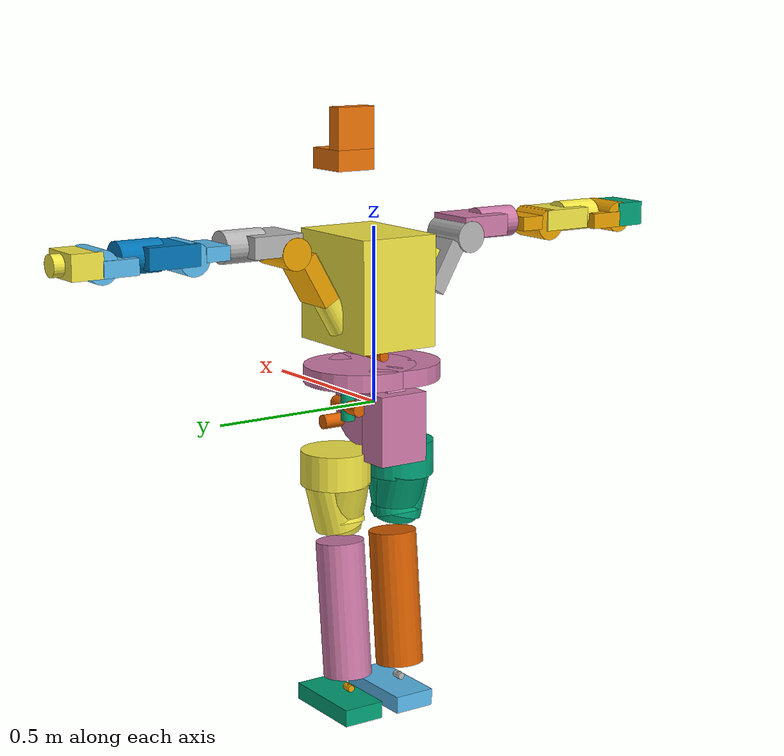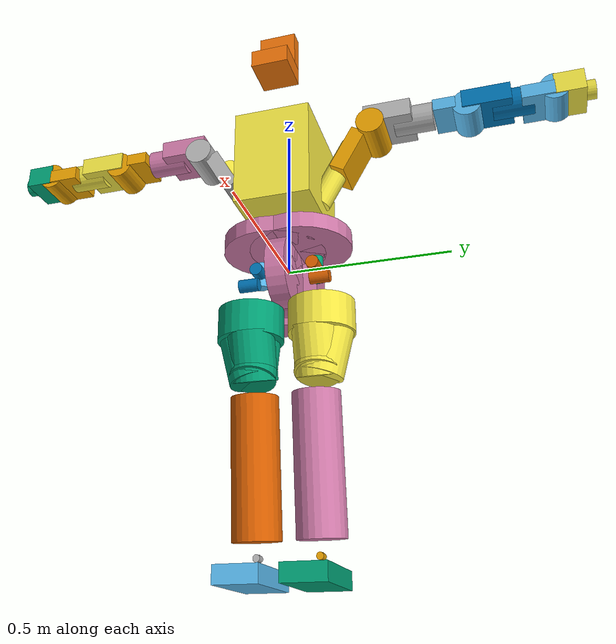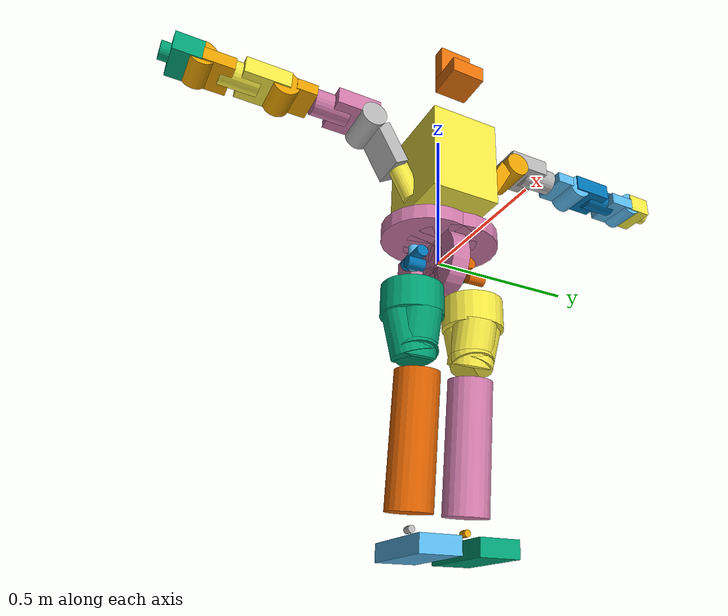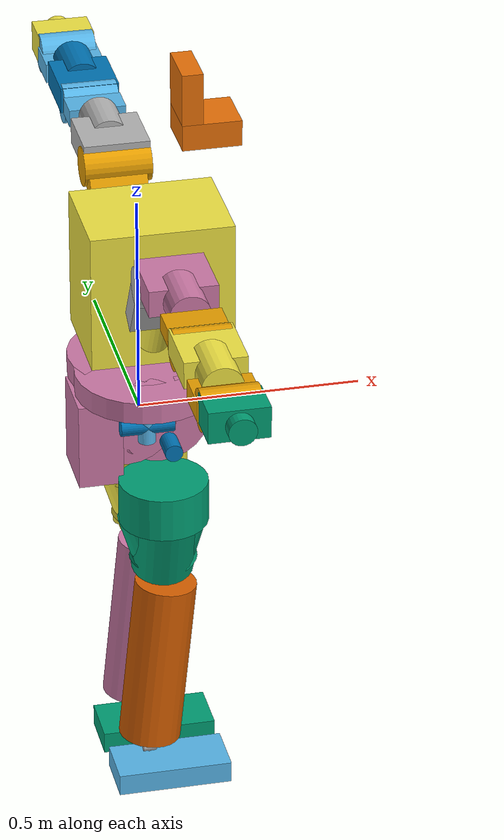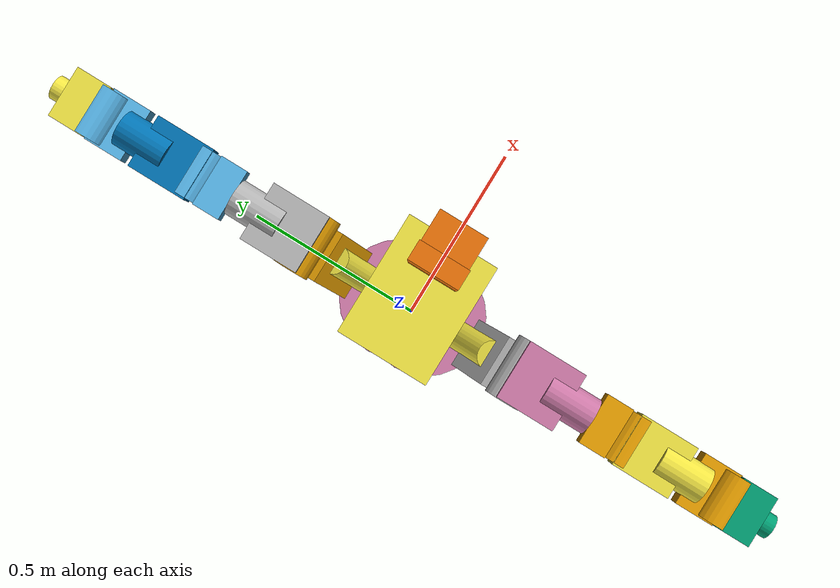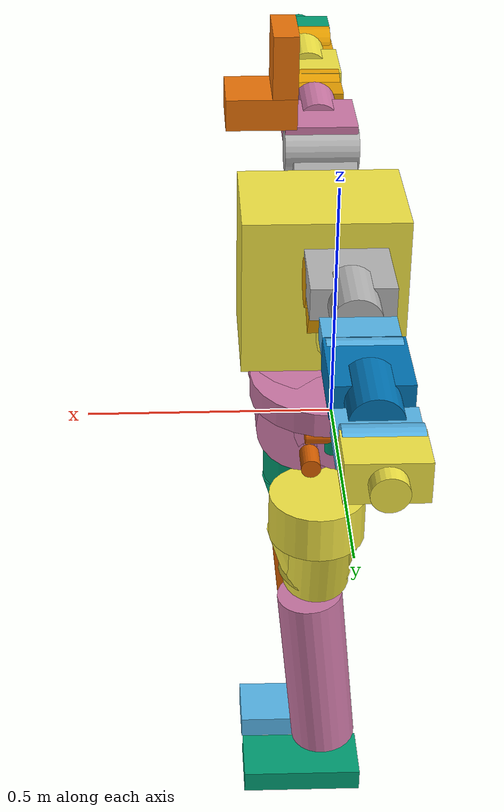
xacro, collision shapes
<robot name="uv_biped" xmlns:xacro="http://ros.org/wiki/xacro">
  <!--include filename="$(find uv_biped)/urdf/atlas_simple_shapes.urdf" /-->
  <include filename="$(find uv_biped)/urdf/uv_biped_simple_shapes.urdf" />
  <include filename="$(find uv_biped)/urdf/atlas.gazebo" />
  <include filename="$(find uv_biped)/urdf/atlas.transmission" />
  <include filename="$(find uv_biped)/urdf/empty_head.urdf" />
</robot>

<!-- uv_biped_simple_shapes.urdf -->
<robot name="drc_skeleton">
    <link name="l_clav">
        <inertial>
            <mass value="2.369" />
            <origin xyz="0.014 0.058 0.029" rpy="0 -0 0" />
            <inertia ixx="0.004" ixy="0.001" ixz="0" iyy="0.006" iyz="0" izz="0.007" />
        </inertial>
        <visual>
            <origin xyz="0 0 0" rpy="1.04719755 0 0" />
            <geometry>
                <mesh filename="package://atlas/meshes/l_clav.dae" scale="1 1 1" />
            </geometry>
        </visual>
        <collision>
          <origin rpy="0 1.5707963267949 0" xyz="0 0.0697 0.0261"/>
          <geometry>
            <cylinder radius="0.045" length="0.1525"/>
          </geometry>
        </collision>
        <collision>
          <origin rpy="1.0472 0 0" xyz="-0.005 -0.0074 -0.0538"/>
          <geometry>
            <box size="0.13 0.15 0.05"/>
          </geometry>
        </collision>
    </link>
    <link name="l_farm">
        <inertial>
            <mass value="0.981" />
            <origin xyz="0 0.041 0" rpy="0 -0 0" />
            <inertia ixx="0.003" ixy="0" ixz="0" iyy="0.001" iyz="0" izz="0.003" />
        </inertial>
        <visual>
            <origin xyz="0 -0.06 0" rpy="0 -0 0" />
            <geometry>
                <mesh filename="package://atlas/meshes/l_farm.dae" scale="1 1 1" />
            </geometry>
        </visual>
        <collision>
          <origin rpy="0 1.5708 0" xyz="0.0 0.065 0.004"/>
          <geometry>
            <cylinder radius="0.045" length="0.125"/>
          </geometry>
        </collision>
        <collision>
          <origin rpy="0 0 0" xyz="0.001 0.015 -0.002"/>
          <geometry>
            <box size="0.135 0.1 0.045"/>
          </geometry>
        </collision>
    </link>
    <link name="l_foot">
        <inertial>
            <mass value="0.867" />
            <origin xyz="0.027 0 -0.067" rpy="0 -0 0" />
            <inertia ixx="0.002" ixy="0" ixz="0" iyy="0.00350421" iyz="0" izz="0.00400651" />
        </inertial>
        <visual>
            <origin xyz="0 0 0" rpy="0 -0 0" />
            <geometry>
                <mesh filename="package://atlas/meshes/l_foot.dae" scale="1 1 1" />
            </geometry>
        </visual>
        <!-- bottom -->
        <collision>
          <origin xyz="0.048 0 -0.056119" rpy="0 0 0"/>
          <geometry>
            <box size="0.26 0.124887 0.05"/>
          </geometry>
        </collision>
    </link>
    <link name="l_hand">
        <inertial>
            <mass value="2.263" />
            <origin xyz="0 0.093 0" rpy="0 -0 0" />
            <inertia ixx="0.01" ixy="0" ixz="0" iyy="0.002" iyz="0" izz="0.01" />
        </inertial>
        <visual>
            <origin xyz="0 0 0" rpy="0 -0 0" />
            <geometry>
                <mesh filename="package://atlas/meshes/l_hand.dae" scale="1 1 1" />
            </geometry>
        </visual>
        <collision>
          <origin rpy="1.5707963267949 0 0" xyz="0.001 0.1 0.01"/>
          <geometry>
            <cylinder radius="0.03" length="0.05"/>
          </geometry>
        </collision>
        <collision>
          <origin rpy="0 0 0" xyz="0.001 0.05 0.01"/>
          <geometry>
            <box size="0.13 0.09 0.07"/>
          </geometry>
        </collision>
    </link>
    <link name="l_larm">
        <inertial>
            <mass value="2.148" />
            <origin xyz="-0.003 0.099 -0.014" rpy="0 -0 0" />
            <inertia ixx="0.005" ixy="0" ixz="0" iyy="0.003" iyz="0" izz="0.006" />
        </inertial>
        <visual>
            <origin xyz="0 0 0" rpy="0 -0 0" />
            <geometry>
                <mesh filename="package://atlas/meshes/l_larm.dae" scale="1 1 1" />
            </geometry>
        </visual>
        <collision>
          <origin rpy="1.5707963267949 0 0" xyz="0.001 0.127 0.00"/>
          <geometry>
            <cylinder radius="0.045" length="0.125"/>
          </geometry>
        </collision>
        <collision>
          <origin rpy="0 0 0" xyz="0.001 0.051 0.0"/>
          <geometry>
            <box size="0.135 0.15 0.06"/>
          </geometry>
        </collision>
    </link>
    <link name="l_lglut">
        <inertial>
            <mass value="0.803" />
            <origin xyz="0.0133341 0.0170484 -0.0312052" rpy="0 -0 0" />
            <inertia ixx="0.0453457" ixy="-2.24344e-05" ixz="2.50508e-06" iyy="0.0174182" iyz="0.000137862" izz="0.0071591" />
        </inertial>
        <visual>
            <origin xyz="0 0 0" rpy="0 -0 0" />
            <geometry>
                <mesh filename="package://atlas/meshes/l_lglut.dae" scale="1 1 1" />
            </geometry>
        </visual>
        <collision>
          <origin rpy="1.5707963267949 0 0" xyz="0.049968 0.022488 -0.0501165"/>
          <geometry>
            <cylinder radius="0.02009687" length="0.060306"/>
          </geometry>
        </collision>
        <collision>
          <origin rpy="0 1.5707963267949 0" xyz="0 0 0"/>
          <geometry>
            <cylinder radius="0.02" length="0.12"/>
          </geometry>
        </collision>
    </link>
    <link name="l_lleg">
        <inertial>
            <mass value="4.367" />
            <origin xyz="0.001 0 -0.187" rpy="0 -0 0" />
            <inertia ixx="0.077" ixy="0" ixz="-0.003" iyy="0.076" iyz="0" izz="0.01" />
        </inertial>
        <visual>
            <origin xyz="0 0 0" rpy="0 -0 0" />
            <geometry>
                <mesh filename="package://atlas/meshes/l_lleg.dae" scale="1.0 1.0 1.0" />
            </geometry>
        </visual>
        <collision>
          <origin rpy="0 0.10 0" xyz="0.02 0.00295 -0.18"/>
          <geometry>
            <cylinder radius="0.07" length="0.40"/>
          </geometry>
        </collision>
    </link>
    <link name="l_scap">
        <inertial>
            <mass value="2.707" />
            <origin xyz="-0.002 0.108 0" rpy="0 -0 0" />
            <inertia ixx="0.01" ixy="0" ixz="0" iyy="0.005" iyz="0" izz="0.013" />
        </inertial>
        <visual>
            <origin xyz="0 0 0" rpy="0 0 0" />
            <geometry>
                <mesh filename="package://atlas/meshes/l_scap.dae" scale="1 1 1" />
            </geometry>
        </visual>
        <collision>
          <origin rpy="1.5707963267949 0 0" xyz="0.001 0.12651 0.01521"/>
          <geometry>
            <cylinder radius="0.045" length="0.125"/>
          </geometry>
        </collision>
        <collision>
          <origin rpy="0 0 0" xyz="0.001 0.05 0.016"/>
          <geometry>
            <box size="0.15 0.15 0.06"/>
          </geometry>
        </collision>
    </link>
    <link name="l_talus">
        <inertial>
            <mass value="0.867" />
            <origin xyz="0 0 0" rpy="0 -0 0" />
            <inertia ixx="0.001" ixy="0" ixz="0" iyy="0.00350421" iyz="0" izz="0.00400651" />
        </inertial>
        <visual>
            <origin xyz="0 0 0" rpy="0 -0 0" />
            <geometry>
                <mesh filename="package://atlas/meshes/l_talus.dae" scale="1 1 1" />
            </geometry>
        </visual>
        <collision>
          <origin rpy="0 1.5707963267949 0" xyz="0 0 0"/>
          <geometry>
            <cylinder radius="0.010181" length="0.029542"/>
          </geometry>
        </collision>
        <collision>
          <origin rpy="1.5707963267949 0 0" xyz="0 0 0"/>
          <geometry>
            <cylinder radius="0.010348" length="0.010059"/>
          </geometry>
        </collision>
    </link>
    <link name="l_uarm">
        <inertial>
            <mass value="1.881" />
            <origin xyz="0.007 0.114 0.008" rpy="0 -0 0" />
            <inertia ixx="0.002" ixy="0" ixz="0" iyy="0.003" iyz="0" izz="0.003" />
        </inertial>
        <visual>
            <origin xyz="0 0 0" rpy="0 -0 0" />
            <geometry>
                <mesh filename="package://atlas/meshes/l_uarm.dae" scale="1 1 1" />
            </geometry>
        </visual>
        <collision>
          <origin rpy="0 1.5708 0" xyz="0.001 0.111 0.0"/>
          <geometry>
            <cylinder radius="0.045" length="0.125"/>
          </geometry>
        </collision>
        <collision>
          <origin rpy="0 1.5707963267949 0" xyz="0.001 0.043 0.01"/>
          <geometry>
            <box size="0.04 0.07 0.13"/>
          </geometry>
        </collision>
    </link>
    <link name="l_uglut">
        <inertial>
            <mass value="1.51622" />
            <origin xyz="0.00529262 -0.00344732 0.00313046" rpy="0 -0 0" />
            <inertia ixx="0.0327037" ixy="-3.79607e-08" ixz="-2.79549e-05" iyy="0.0174182" iyz="-3.2735e-08" izz="0.0071591" />
        </inertial>
        <visual>
            <origin xyz="0 0 0" rpy="0 -0 0" />
            <geometry>
                <mesh filename="package://atlas/meshes/l_uglut.dae" scale="1 1 1" />
            </geometry>
        </visual>
        <collision>
          <origin rpy="0 1.5707963267949 0" xyz="0 0 0"/>
          <geometry>
            <cylinder radius="0.019096" length="0.078396"/>
          </geometry>
        </collision>
        <collision>
          <origin rpy="0 0 0" xyz="0 0 0"/>
          <geometry>
            <cylinder radius="0.019841" length="0.080842"/>
          </geometry>
        </collision>
    </link>
    <link name="l_uleg">
        <inertial>
            <mass value="7.227" />
            <origin xyz="0 0 -0.21" rpy="0 -0 0" />
            <inertia ixx="0.0453457" ixy="0" ixz="0" iyy="0.09" iyz="0" izz="0.0071591" />
        </inertial>
        <visual>
            <origin xyz="0 0 0" rpy="0 -0 0" />
            <geometry>
                <mesh filename="package://atlas/meshes/l_uleg.dae" scale="1.0 1.0 1.0" />
            </geometry>
        </visual>
        <collision>
          <origin rpy="0 0 0" xyz="-0.0179 0.02085 -0.13"/>
          <geometry>
            <cylinder radius="0.1" length="0.10"/>
          </geometry>
        </collision>
        <collision>
          <origin rpy="0 -0.3 0" xyz="-0.03 0.01 -0.23"/>
          <geometry>
            <cylinder radius="0.07" length="0.15"/>
          </geometry>
        </collision>
        <collision>
          <origin rpy="0 0.3 0" xyz="-0.005 0.01 -0.23"/>
          <geometry>
            <cylinder radius="0.07" length="0.15"/>
          </geometry>
        </collision>
        <collision>
          <origin rpy="-0.25 0 0" xyz="-0.02 0.03 -0.23"/>
          <geometry>
            <cylinder radius="0.07" length="0.15"/>
          </geometry>
        </collision>
    </link>
    <link name="ltorso">
        <inertial>
            <mass value="1.62729" />
            <origin xyz="-0.0112984 -3.15366e-06 0.0746835" rpy="0 -0 0" />
            <inertia ixx="0.0646646" ixy="-5.04491e-08" ixz="-0.000342157" iyy="0.050298" iyz="4.87119e-07" izz="0.10973" />
        </inertial>
        <visual>
            <origin xyz="0 0 0" rpy="0 -0 0" />
            <geometry>
                <mesh filename="package://atlas/meshes/ltorso.dae" scale="1 1 1" />
            </geometry>
        </visual>
    </link>
    <link name="mtorso">
        <inertial>
            <mass value="3.8068" />
            <origin xyz="-0.00816266 -0.0131245 0.0305974" rpy="0 -0 0" />
            <inertia ixx="0.1975" ixy="-6.10764e-05" ixz="3.94009e-05" iyy="0.544742" iyz="5.27463e-05" izz="0.10973" />
        </inertial>
        <visual>
            <origin xyz="0 0 0" rpy="0 -0 0" />
            <geometry>
                <mesh filename="package://atlas/meshes/mtorso.dae" scale="1 1 1" />
            </geometry>
        </visual>
        <collision>
          <origin rpy="1.5707963267949 0 0" xyz="0 0 0"/>
          <geometry>
            <cylinder radius="0.017" length="0.03"/>
          </geometry>
        </collision>
        <collision>
          <origin rpy="0 1.5707963267949 0" xyz="0.0285 0 0.05"/>
          <geometry>
            <cylinder radius="0.015" length="0.02"/>
          </geometry>
        </collision>
        <collision>
          <origin rpy="0 1.5707963267949 0" xyz="-0.0285 0 0.05"/>
          <geometry>
            <cylinder radius="0.015" length="0.02"/>
          </geometry>
        </collision>
    </link>
    <link name="pelvis">
        <inertial>
            <mass value="12.54638" />
            <origin xyz="0.0111 0 0.0271" rpy="0 -0 0" />
            <inertia ixx="0.0327037" ixy="0.0008" ixz="-0.0007" iyy="0.0174182" iyz="-0.0005" izz="0.118059" />
        </inertial>
        <visual>
            <origin xyz="0 0 0" rpy="0 -0 0" />
            <geometry>
                <mesh filename="package://atlas/meshes/pelvis.dae" scale="1.0 1.0 1.0" />
            </geometry>
        </visual>
        <collision>
          <origin rpy="1.5707963267949 0 0" xyz="0.046 0.0 -0.02"/>
          <geometry>
            <cylinder radius="0.11" length="0.06"/>
          </geometry>
        </collision>
        <collision>
          <origin rpy="1.5707963267949 0 0" xyz="-0.03 0.0 -0.02"/>
          <geometry>
            <cylinder radius="0.11" length="0.06"/>
          </geometry>
        </collision>
        <collision>
          <origin rpy="0 0 0" xyz="0.01 0.042 0.09"/>
          <geometry>
            <cylinder radius="0.16" length="0.05"/>
          </geometry>
        </collision>
        <collision>
          <origin rpy="0 0 0" xyz="0.01 -0.042 0.09"/>
          <geometry>
            <cylinder radius="0.16" length="0.05"/>
          </geometry>
        </collision>
        <collision>
          <origin rpy="0 0 0" xyz="-0.1 0 -0.05"/>
          <geometry>
            <box size="0.1 0.15 0.2"/>
          </geometry>
        </collision>
    </link>
    <link name="r_clav">
        <inertial>
            <mass value="2.369" />
            <origin xyz="0.014 -0.058 0.029" rpy="0 -0 0" />
            <inertia ixx="0.004" ixy="-0.001" ixz="0" iyy="0.006" iyz="0" izz="0.007" />
        </inertial>
        <visual>
            <origin xyz="0 0 0" rpy="-1.04719755 0 0" />
            <geometry>
                <mesh filename="package://atlas/meshes/r_clav.dae" scale="1 1 1" />
            </geometry>
        </visual>
        <collision>
          <origin rpy="0 1.5707963267949 0" xyz="0 -0.0697 0.0261"/>
          <geometry>
            <cylinder radius="0.045" length="0.1525"/>
          </geometry>
        </collision>
        <collision>
          <origin rpy="-1.0472 0 0" xyz="-0.005 0.0074 -0.0538"/>
          <geometry>
            <box size="0.13 0.15 0.05"/>
          </geometry>
        </collision>
    </link>
    <link name="r_farm">
        <inertial>
            <mass value="0.981" />
            <origin xyz="0 -0.041 0" rpy="0 -0 0" />
            <inertia ixx="0.003" ixy="0" ixz="0" iyy="0.001" iyz="0" izz="0.003" />
        </inertial>
        <visual>
            <origin xyz="0 0.06 0" rpy="0 -0 0" />
            <geometry>
                <mesh filename="package://atlas/meshes/r_farm.dae" scale="1 1 1" />
            </geometry>
        </visual>
        <collision>
          <origin rpy="0 1.5708 0" xyz="0.0 -0.065 0.004"/>
          <geometry>
            <cylinder radius="0.045" length="0.125"/>
          </geometry>
        </collision>
        <collision>
          <origin rpy="0 0 0" xyz="0.001 -0.015 -0.002"/>
          <geometry>
            <box size="0.135 0.1 0.045"/>
          </geometry>
        </collision>
    </link>
    <link name="r_foot">
        <inertial>
            <mass value="0.867" />
            <origin xyz="0.027 0 -0.067" rpy="0 -0 0" />
            <inertia ixx="0.002" ixy="0" ixz="0" iyy="0.00350421" iyz="0" izz="0.00400651" />
        </inertial>
        <visual>
            <origin xyz="0 0 0" rpy="0 -0 0" />
            <geometry>
                <mesh filename="package://atlas/meshes/r_foot.dae" scale="1 1 1" />
            </geometry>
        </visual>
        <!-- bottom -->
        <collision>
          <origin xyz="0.048 0 -0.056119" rpy="0 0 0"/>
          <geometry>
            <box size="0.26 0.124887 0.05"/>
          </geometry>
        </collision>
    </link>
    <link name="r_hand">
        <inertial>
            <mass value="2.263" />
            <origin xyz="0 -0.093 0" rpy="0 -0 0" />
            <inertia ixx="0.01" ixy="0" ixz="0" iyy="0.002" iyz="0" izz="0.01" />
        </inertial>
        <visual>
            <origin xyz="0 0 0" rpy="0 -0 0" />
            <geometry>
                <mesh filename="package://atlas/meshes/r_hand.dae" scale="1 1 1" />
            </geometry>
        </visual>
        <collision>
          <origin rpy="1.5707963267949 0 0" xyz="0.001 -0.1 0.01"/>
          <geometry>
            <cylinder radius="0.03" length="0.05"/>
          </geometry>
        </collision>
        <collision>
          <origin rpy="0 0 0" xyz="0.001 -0.05 0.01"/>
          <geometry>
            <box size="0.13 0.09 0.07"/>
          </geometry>
        </collision>
    </link>
    <link name="r_larm">
        <inertial>
            <mass value="2.148" />
            <origin xyz="-0.003 -0.099 -0.014" rpy="0 -0 0" />
            <inertia ixx="0.005" ixy="0" ixz="0" iyy="0.003" iyz="0" izz="0.006" />
        </inertial>
        <visual>
            <origin xyz="0 0 0" rpy="0 -0 0" />
            <geometry>
                <mesh filename="package://atlas/meshes/r_larm.dae" scale="1.0 1.0 1.0" />
            </geometry>
        </visual>
        <collision>
          <origin rpy="1.5707963267949 0 0" xyz="0.001 -0.127 0.00"/>
          <geometry>
            <cylinder radius="0.045" length="0.125"/>
          </geometry>
        </collision>
        <collision>
          <origin rpy="0 0 0" xyz="0.001 -0.051 0.0"/>
          <geometry>
            <box size="0.135 0.15 0.06"/>
          </geometry>
        </collision>
    </link>
    <link name="r_lglut">
        <inertial>
            <mass value="0.803" />
            <origin xyz="0.0133341 -0.0170484 -0.0312052" rpy="0 -0 0" />
            <inertia ixx="0.0453457" ixy="2.24344e-05" ixz="2.50508e-06" iyy="0.0174182" iyz="-0.000137862" izz="0.0071591" />
        </inertial>
        <visual>
            <origin xyz="0 0 0" rpy="0 -0 0" />
            <geometry>
                <mesh filename="package://atlas/meshes/r_lglut.dae" scale="1.0 1.0 1.0" />
            </geometry>
        </visual>
        <collision>
          <origin rpy="1.5707963267949 0 0" xyz="0.049968 -0.022488 -0.0501165"/>
          <geometry>
            <cylinder radius="0.02009687" length="0.060306"/>
          </geometry>
        </collision>
        <collision>
          <origin rpy="0 1.5707963267949 0" xyz="0 0 0"/>
          <geometry>
            <cylinder radius="0.02" length="0.12"/>
          </geometry>
        </collision>
    </link>
    <link name="r_lleg">
        <inertial>
            <mass value="4.367" />
            <origin xyz="0.001 0 -0.187" rpy="0 -0 0" />
            <inertia ixx="0.077" ixy="-0" ixz="-0.003" iyy="0.076" iyz="-0" izz="0.01" />
        </inertial>
        <visual>
            <origin xyz="0 0 0" rpy="0 -0 0" />
            <geometry>
                <mesh filename="package://atlas/meshes/r_lleg.dae" scale="1.0 1.0 1.0" />
            </geometry>
        </visual>
        <collision>
          <origin rpy="0 0.10 0" xyz="0.02 -0.00295 -0.18"/>
          <geometry>
            <cylinder radius="0.07" length="0.40"/>
          </geometry>
        </collision>
    </link>
    <link name="r_scap">
        <inertial>
            <mass value="2.707" />
            <origin xyz="-0.002 -0.108 0" rpy="0 -0 0" />
            <inertia ixx="0.01" ixy="0" ixz="0" iyy="0.005" iyz="0" izz="0.013" />
        </inertial>
        <visual>
            <origin xyz="0 0 0" rpy="0 -0 0" />
            <geometry>
                <mesh filename="package://atlas/meshes/r_scap.dae" scale="1 1 1" />
            </geometry>
        </visual>
        <collision>
          <origin rpy="1.5707963267949 0 0" xyz="0.001 -0.12651 0.01521"/>
          <geometry>
            <cylinder radius="0.045" length="0.125"/>
          </geometry>
        </collision>
        <collision>
          <origin rpy="0 0 0" xyz="0.001 -0.05 0.016"/>
          <geometry>
            <box size="0.15 0.15 0.06"/>
          </geometry>
        </collision>
    </link>
    <link name="r_talus">
        <inertial>
            <mass value="0.867" />
            <origin xyz="0 0 0" rpy="0 -0 0" />
            <inertia ixx="0.001" ixy="0" ixz="0" iyy="0.00350421" iyz="0" izz="0.00400651" />
        </inertial>
        <visual>
            <origin xyz="0 0 0" rpy="0 -0 0" />
            <geometry>
                <mesh filename="package://atlas/meshes/r_talus.dae" scale="1 1 1" />
            </geometry>
        </visual>
        <collision>
          <origin rpy="0 1.5707963267949 0" xyz="0 0 0"/>
          <geometry>
            <cylinder radius="0.010181" length="0.029542"/>
          </geometry>
        </collision>
        <collision>
          <origin rpy="1.5707963267949 0 0" xyz="0 0 0"/>
          <geometry>
            <cylinder radius="0.010348" length="0.010059"/>
          </geometry>
        </collision>
    </link>
    <link name="r_uarm">
        <inertial>
            <mass value="1.881" />
            <origin xyz="0.007 -0.114 0.008" rpy="0 -0 0" />
            <inertia ixx="0.002" ixy="0" ixz="0" iyy="0.003" iyz="0" izz="0.003" />
        </inertial>
        <visual>
            <origin xyz="0 0 0" rpy="0 -0 0" />
            <geometry>
                <mesh filename="package://atlas/meshes/r_uarm.dae" scale="1.0 1.0 1.0" />
            </geometry>
        </visual>
        <collision>
          <origin rpy="0 1.5708 0" xyz="0.001 -0.111 0.0"/>
          <geometry>
            <cylinder radius="0.045" length="0.125"/>
          </geometry>
        </collision>
        <collision>
          <origin rpy="0 1.5707963267949 0" xyz="0.001 -0.043 0.01"/>
          <geometry>
            <box size="0.04 0.07 0.13"/>
          </geometry>
        </collision>
    </link>
    <link name="r_uglut">
        <inertial>
            <mass value="1.51622" />
            <origin xyz="0.00529262 0.00344732 0.00313046" rpy="0 -0 0" />
            <inertia ixx="0.0327037" ixy="3.79607e-08" ixz="-2.79549e-05" iyy="0.0174182" iyz="3.2735e-08" izz="0.0071591" />
        </inertial>
        <visual>
            <origin xyz="0 0 0" rpy="0 -0 0" />
            <geometry>
                <mesh filename="package://atlas/meshes/r_uglut.dae" scale="1.0 1.0 1.0" />
            </geometry>
        </visual>
        <collision>
          <origin rpy="0 1.5707963267949 0" xyz="0 0 0"/>
          <geometry>
            <cylinder radius="0.019096" length="0.078396"/>
          </geometry>
        </collision>
        <collision>
          <origin rpy="0 0 0" xyz="0 0 0"/>
          <geometry>
            <cylinder radius="0.019841" length="0.080842"/>
          </geometry>
        </collision>
    </link>
    <link name="r_uleg">
        <inertial>
            <mass value="7.227" />
            <origin xyz="0 0 -0.21" rpy="0 -0 0" />
            <inertia ixx="0.0453457" ixy="0" ixz="0" iyy="0.09" iyz="0" izz="0.0071591" />
        </inertial>
        <visual>
            <origin xyz="0 0 0" rpy="0 -0 0" />
            <geometry>
                <mesh filename="package://atlas/meshes/r_uleg.dae" scale="1.0 1.0 1.0" />
            </geometry>
        </visual>
        <collision>
          <origin rpy="0 0 0" xyz="-0.0179 -0.02085 -0.13"/>
          <geometry>
            <cylinder radius="0.1" length="0.10"/>
          </geometry>
        </collision>
        <collision>
          <origin rpy="0 -0.3 0" xyz="-0.03 -0.01 -0.23"/>
          <geometry>
            <cylinder radius="0.07" length="0.15"/>
          </geometry>
        </collision>
        <collision>
          <origin rpy="0 0.3 0" xyz="-0.005 -0.01 -0.23"/>
          <geometry>
            <cylinder radius="0.07" length="0.15"/>
          </geometry>
        </collision>
        <collision>
          <origin rpy="0.25 0 0" xyz="-0.02 -0.03 -0.23"/>
          <geometry>
            <cylinder radius="0.07" length="0.15"/>
          </geometry>
        </collision>
    </link>
    <link name="utorso">
        <inertial>
            <mass value="15.2272" />
            <origin xyz="0.02 -0.001 0.211" rpy="0 -0 0" />
            <inertia ixx="0.395" ixy="0" ixz="0.083" iyy="0.544742" iyz="-0.003" izz="0.10973" />
        </inertial>
        <visual>
            <origin xyz="0 0 0" rpy="0 -0 0" />
            <geometry>
                <mesh filename="package://atlas/meshes/utorso.dae" scale="1 1 1" />
            </geometry>
        </visual>
        <collision>
          <origin rpy="0 -0 0" xyz="0.0446 0 0.1869"/>
          <geometry>
            <box size="0.3188 0.24 0.3162"/>
          </geometry>
        </collision>
        <collision>
          <origin rpy="-0.5236 0 0" xyz="0.024 0.16 0.18"/>
          <geometry>
            <cylinder radius="0.0363" length="0.22375"/>
          </geometry>
        </collision>
        <collision>
          <origin rpy="0.5236 0 0" xyz="0.024 -0.16 0.18"/>
          <geometry>
            <cylinder radius="0.0363" length="0.22375"/>
          </geometry>
        </collision>
    </link>
    <joint name="back_lbz" type="revolute">
        <origin xyz="-0.0125 0 0" rpy="0 -0 0" />
        <axis xyz="0 0 1" />
        <parent link="pelvis" />
        <child link="ltorso" />
        <dynamics damping="10" friction="0" />
        <limit effort="124.016" velocity="12" lower="-0.610865" upper="0.610865" />
        <safety_controller k_position="100" k_velocity="100" soft_lower_limit="-10.6109" soft_upper_limit="10.6109" />
    </joint>
    <joint name="back_mby" type="revolute">
        <origin xyz="0 0 0.09" rpy="0 -0 0" />
        <axis xyz="0 1 0" />
        <parent link="ltorso" />
        <child link="mtorso" />
        <dynamics damping="10" friction="0" />
        <limit effort="206.843" velocity="12" lower="-1.2" upper="1.28" />
        <safety_controller k_position="100" k_velocity="100" soft_lower_limit="-11.2" soft_upper_limit="11.28" />
    </joint>
    <joint name="back_ubx" type="revolute">
        <origin xyz="0 0 0.05" rpy="0 -0 0" />
        <axis xyz="1 0 0" />
        <parent link="mtorso" />
        <child link="utorso" />
        <dynamics damping="10" friction="0" />
        <limit effort="94.91" velocity="12" lower="-0.790809" upper="0.790809" />
        <safety_controller k_position="100" k_velocity="100" soft_lower_limit="-10.7908" soft_upper_limit="10.7908" />
    </joint>
    <joint name="l_arm_elx" type="revolute">
        <origin xyz="0 0.121 0.013" rpy="0 -0 0" />
        <axis xyz="1 0 0" />
        <parent link="l_uarm" />
        <child link="l_larm" />
        <dynamics damping="1.0" friction="0" />
        <limit effort="114" velocity="12" lower="0" upper="2.35619" />
        <safety_controller k_position="100" k_velocity="100" soft_lower_limit="-10" soft_upper_limit="12.3562" />
    </joint>
    <joint name="l_arm_ely" type="revolute">
        <origin xyz="0 0.185 0" rpy="0 -0 0" />
        <axis xyz="0 1 0" />
        <parent link="l_scap" />
        <child link="l_uarm" />
        <dynamics damping="1.0" friction="0" />
        <limit effort="114" velocity="12" lower="0" upper="3.14159" />
        <safety_controller k_position="100" k_velocity="100" soft_lower_limit="-10" soft_upper_limit="13.1416" />
    </joint>
    <joint name="l_arm_mwx" type="revolute">
        <origin xyz="0 0.058 0" rpy="0 -0 0" />
        <axis xyz="1 0 0" />
        <parent link="l_farm" />
        <child link="l_hand" />
        <dynamics damping="1.0" friction="0" />
        <limit effort="60" velocity="12" lower="-0.436" upper="1.571" />
        <safety_controller k_position="100" k_velocity="100" soft_lower_limit="-10.436" soft_upper_limit="11.571" />
    </joint>
    <joint name="l_arm_shx" type="revolute">
        <origin xyz="0 0.075 0.036" rpy="0 -0 0" />
        <axis xyz="1 0 0" />
        <parent link="l_clav" />
        <child link="l_scap" />
        <dynamics damping="1.0" friction="0" />
        <limit effort="170" velocity="12" lower="-1.39626" upper="1.74533" />
        <safety_controller k_position="100" k_velocity="100" soft_lower_limit="-11.3963" soft_upper_limit="11.7453" />
    </joint>
    <joint name="l_arm_usy" type="revolute">
        <origin xyz="0.024 0.221 0.289" rpy="0 -0 0" />
        <axis xyz="0 0.5 0.866025" />
        <parent link="utorso" />
        <child link="l_clav" />
        <dynamics damping="1.0" friction="0" />
        <limit effort="212" velocity="12" lower="-1.9635" upper="1.9635" />
        <safety_controller k_position="100" k_velocity="100" soft_lower_limit="-11.9635" soft_upper_limit="11.9635" />
    </joint>
    <joint name="l_arm_uwy" type="revolute">
        <origin xyz="0 0.188 -0.013" rpy="0 -0 0" />
        <axis xyz="0 1 0" />
        <parent link="l_larm" />
        <child link="l_farm" />
        <dynamics damping="1.0" friction="0" />
        <limit effort="114" velocity="12" lower="-1.571" upper="1.571" />
        <safety_controller k_position="100" k_velocity="100" soft_lower_limit="-11.571" soft_upper_limit="11.571" />
    </joint>
    <joint name="l_leg_kny" type="revolute">
        <origin xyz="-0.05 0 -0.374" rpy="0 -0 0" />
        <axis xyz="0 1 0" />
        <parent link="l_uleg" />
        <child link="l_lleg" />
        <dynamics damping="1.0" friction="0" />
        <limit effort="400" velocity="12" lower="0" upper="2.45" />
        <safety_controller k_position="100" k_velocity="100" soft_lower_limit="-10" soft_upper_limit="12.45" />
    </joint>
    <joint name="l_leg_lax" type="revolute">
        <origin xyz="0 0 0" rpy="0 -0 0" />
        <axis xyz="1 0 0" />
        <parent link="l_talus" />
        <child link="l_foot" />
        <dynamics damping="1.0" friction="0" />
        <limit effort="90" velocity="12" lower="-0.436" upper="0.436" />
        <safety_controller k_position="100" k_velocity="100" soft_lower_limit="-10.436" soft_upper_limit="10.436" />
    </joint>
    <joint name="l_leg_lhy" type="revolute">
        <origin xyz="0.05 0 -0.05" rpy="0 -0 0" />
        <axis xyz="0 1 0" />
        <parent link="l_lglut" />
        <child link="l_uleg" />
        <dynamics damping="1.0" friction="0" />
        <limit effort="260" velocity="12" lower="-1.75" upper="0.524" />
        <safety_controller k_position="100" k_velocity="100" soft_lower_limit="-11.75" soft_upper_limit="10.524" />
    </joint>
    <joint name="l_leg_mhx" type="revolute">
        <origin xyz="0 0 0" rpy="0 -0 0" />
        <axis xyz="1 0 0" />
        <parent link="l_uglut" />
        <child link="l_lglut" />
        <dynamics damping="1.0" friction="0" />
        <limit effort="180" velocity="12" lower="-0.47" upper="0.495" />
        <safety_controller k_position="100" k_velocity="100" soft_lower_limit="-10.47" soft_upper_limit="10.495" />
    </joint>
    <joint name="l_leg_uay" type="revolute">
        <origin xyz="0 0 -0.422" rpy="0 -0 0" />
        <axis xyz="0 1 0" />
        <parent link="l_lleg" />
        <child link="l_talus" />
        <dynamics damping="1.0" friction="0" />
        <limit effort="220" velocity="12" lower="-0.9" upper="0.698" />
        <safety_controller k_position="100" k_velocity="100" soft_lower_limit="-10.698" soft_upper_limit="10.698" />
    </joint>
    <joint name="l_leg_uhz" type="revolute">
        <origin xyz="0 0.089 0" rpy="0 -0 0" />
        <axis xyz="0 0 1" />
        <parent link="pelvis" />
        <child link="l_uglut" />
        <dynamics damping="1.0" friction="0" />
        <limit effort="110" velocity="12" lower="-0.32" upper="1.14" />
        <safety_controller k_position="100" k_velocity="100" soft_lower_limit="-10.32" soft_upper_limit="11.14" />
    </joint>
    <joint name="neck_ay" type="revolute">
        <!-- per slides on sensor head kinematics 2013-02-13 -->
        <origin xyz="0.21672 0 0.53796" rpy="0 -0 0" />
        <axis xyz="0 1 0" />
        <parent link="utorso" />
        <child link="head" />
        <dynamics damping="1.0" friction="0" />
        <!-- per slides on sensor head kinematics 2012-12-14 -->
        <limit effort="5" lower="-0.610865238" upper="1.13446401" velocity="12"/>
        <safety_controller k_position="100" k_velocity="100" soft_lower_limit="-10.610865238" soft_upper_limit="11.13446401"/>
    </joint>
    <joint name="r_arm_elx" type="revolute">
        <origin xyz="0 -0.121 0.013" rpy="0 -0 0" />
        <axis xyz="1 0 0" />
        <parent link="r_uarm" />
        <child link="r_larm" />
        <dynamics damping="1.0" friction="0" />
        <limit effort="114" velocity="12" lower="-2.35619" upper="0" />
        <safety_controller k_position="100" k_velocity="100" soft_lower_limit="-12.3562" soft_upper_limit="10" />
    </joint>
    <joint name="r_arm_ely" type="revolute">
        <origin xyz="0 -0.185 0" rpy="0 -0 0" />
        <axis xyz="0 1 0" />
        <parent link="r_scap" />
        <child link="r_uarm" />
        <dynamics damping="1.0" friction="0" />
        <limit effort="114" velocity="12" lower="0" upper="3.14159" />
        <safety_controller k_position="100" k_velocity="100" soft_lower_limit="-10" soft_upper_limit="13.1416" />
    </joint>
    <joint name="r_arm_mwx" type="revolute">
        <origin xyz="0 -0.058 0" rpy="0 -0 0" />
        <axis xyz="1 0 0" />
        <parent link="r_farm" />
        <child link="r_hand" />
        <dynamics damping="1.0" friction="0" />
        <limit effort="60" velocity="12" lower="-1.571" upper="0.436" />
        <safety_controller k_position="100" k_velocity="100" soft_lower_limit="-11.571" soft_upper_limit="10.436" />
    </joint>
    <joint name="r_arm_shx" type="revolute">
        <origin xyz="0 -0.075 0.036" rpy="0 -0 0" />
        <axis xyz="1 0 0" />
        <parent link="r_clav" />
        <child link="r_scap" />
        <dynamics damping="1.0" friction="0" />
        <limit effort="170" velocity="12" lower="-1.74533" upper="1.39626" />
        <safety_controller k_position="100" k_velocity="100" soft_lower_limit="-11.7453" soft_upper_limit="11.3963" />
    </joint>
    <joint name="r_arm_usy" type="revolute">
        <origin xyz="0.024 -0.221 0.289" rpy="0 -0 0" />
        <axis xyz="0 0.5 -0.866025" />
        <parent link="utorso" />
        <child link="r_clav" />
        <dynamics damping="1.0" friction="0" />
        <limit effort="212" velocity="12" lower="-1.9635" upper="1.9635" />
        <safety_controller k_position="100" k_velocity="100" soft_lower_limit="-11.9635" soft_upper_limit="11.9635" />
    </joint>
    <joint name="r_arm_uwy" type="revolute">
        <origin xyz="0 -0.188 -0.013" rpy="0 -0 0" />
        <axis xyz="0 1 0" />
        <parent link="r_larm" />
        <child link="r_farm" />
        <dynamics damping="1.0" friction="0" />
        <limit effort="114" velocity="12" lower="-1.571" upper="1.571" />
        <safety_controller k_position="100" k_velocity="100" soft_lower_limit="-11.571" soft_upper_limit="11.571" />
    </joint>
    <joint name="r_leg_kny" type="revolute">
        <origin xyz="-0.05 0 -0.374" rpy="0 -0 0" />
        <axis xyz="0 1 0" />
        <parent link="r_uleg" />
        <child link="r_lleg" />
        <dynamics damping="1.0" friction="0" />
        <limit effort="400" velocity="12" lower="0" upper="2.45" />
        <safety_controller k_position="100" k_velocity="100" soft_lower_limit="-10" soft_upper_limit="12.45" />
    </joint>
    <joint name="r_leg_lax" type="revolute">
        <origin xyz="0 0 0" rpy="0 -0 0" />
        <axis xyz="1 0 0" />
        <parent link="r_talus" />
        <child link="r_foot" />
        <dynamics damping="1.0" friction="0" />
        <limit effort="90" velocity="12" lower="-0.436" upper="0.436" />
        <safety_controller k_position="100" k_velocity="100" soft_lower_limit="-10.436" soft_upper_limit="10.436" />
    </joint>
    <joint name="r_leg_lhy" type="revolute">
        <origin xyz="0.05 0 -0.05" rpy="0 -0 0" />
        <axis xyz="0 1 0" />
        <parent link="r_lglut" />
        <child link="r_uleg" />
        <dynamics damping="1.0" friction="0" />
        <limit effort="260" velocity="12" lower="-1.745" upper="0.524" />
        <safety_controller k_position="100" k_velocity="100" soft_lower_limit="-11.745" soft_upper_limit="10.524" />
    </joint>
    <joint name="r_leg_mhx" type="revolute">
        <origin xyz="0 0 0" rpy="0 -0 0" />
        <axis xyz="1 0 0" />
        <parent link="r_uglut" />
        <child link="r_lglut" />
        <dynamics damping="1.0" friction="0" />
        <limit effort="180" velocity="12" lower="-0.495" upper="0.47" />
        <safety_controller k_position="100" k_velocity="100" soft_lower_limit="-10.495" soft_upper_limit="10.47" />
    </joint>
    <joint name="r_leg_uay" type="revolute">
        <origin xyz="0 0 -0.422" rpy="0 -0 0" />
        <axis xyz="0 1 0" />
        <parent link="r_lleg" />
        <child link="r_talus" />
        <dynamics damping="1.0" friction="0" />
        <limit effort="220" velocity="12" lower="-0.9" upper="0.698" />
        <safety_controller k_position="100" k_velocity="100" soft_lower_limit="-10.698" soft_upper_limit="10.698" />
    </joint>
    <joint name="r_leg_uhz" type="revolute">
        <origin xyz="0 -0.089 0" rpy="0 -0 0" />
        <axis xyz="0 0 1" />
        <parent link="pelvis" />
        <child link="r_uglut" />
        <dynamics damping="1.0" friction="0" />
        <limit effort="110" velocity="12" lower="-1.14" upper="0.32" />
        <safety_controller k_position="100" k_velocity="100" soft_lower_limit="-11.14" soft_upper_limit="10.32" />
    </joint>
</robot>

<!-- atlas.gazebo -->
<robot name="drc_skeleton">
  <gazebo>
    <!-- robot model offset -->
    <pose>0 0 0.93 0 0 0</pose>
  </gazebo>
  <gazebo>
    <plugin name="atlas_plugin" filename="libAtlasLQRPlugin.so"/>
    <plugin filename="libgazebo_ros_joint_trajectory.so" name="joint_trajectory_plugin">
      <topicName>joint_trajectory</topicName>
      <updateRate>1000.0</updateRate>
    </plugin>
  </gazebo>
  <!-- imu -->
  <link name="imu_link">
    <inertial>
      <mass value="0.1"/>
      <origin xyz="0 0 0"/>
      <inertia ixx="0.001" ixy="0" ixz="0" iyy="0.001" iyz="0" izz="0.001"/>
    </inertial>
    <visual>
      <origin rpy="0 0 0" xyz="0 0 0"/>
      <geometry>
        <box size="0.01 0.01 0.01"/>
      </geometry>
    </visual>
  </link>
  <joint name="imu_joint" type="fixed">
    <parent link="pelvis"/>
    <child link="imu_link"/>
    <origin xyz="0.05991527603 0 -0.01415" rpy="0 0 0"/>
  </joint>
  <gazebo reference="imu_link">
    <!-- this is expected to be reparented to pelvis with appropriate offset
         when imu_link is reduced by fixed joint reduction -->
    <!-- todo: this is working with gazebo 1.4, need to write a unit test -->
    <sensor name="imu_sensor" type="imu">
      <always_on>1</always_on>
      <update_rate>1000.0</update_rate>
      <imu>
        <noise>
          <type>gaussian</type>
          <rate>
            <mean>0.0</mean>
            <stddev>2e-4</stddev>
            <bias_mean>0.0000075</bias_mean>
            <bias_stddev>0.0000008</bias_stddev>
          </rate>
          <accel>
            <mean>0.0</mean>
            <stddev>1.7e-2</stddev>
            <bias_mean>0.1</bias_mean>
            <bias_stddev>0.001</bias_stddev>
          </accel>
        </noise>
      </imu>
    </sensor>
  </gazebo>
  <gazebo reference="l_arm_mwx">
    <provideFeedback>1</provideFeedback>
  </gazebo>
  <gazebo reference="r_arm_mwx">
    <provideFeedback>1</provideFeedback>
  </gazebo>
  <gazebo reference="l_leg_lax">
    <provideFeedback>1</provideFeedback>
    <cfmDamping>1</cfmDamping>
  </gazebo>
  <gazebo reference="r_leg_lax">
    <provideFeedback>1</provideFeedback>
    <cfmDamping>1</cfmDamping>
  </gazebo>
  <gazebo reference="r_foot">
    <!-- kp and kd for rubber -->
    <kp>1000000.0</kp>
    <kd>100.0</kd>
    <mu1>1.5</mu1>
    <mu2>1.5</mu2>
    <fdir1>1 0 0</fdir1>
    <maxVel>1.0</maxVel>
    <minDepth>0.00</minDepth>
  </gazebo>
  <gazebo reference="l_foot">
    <kp>1000000.0</kp>
    <kd>100.0</kd>
    <mu1>1.5</mu1>
    <mu2>1.5</mu2>
    <fdir1>1 0 0</fdir1>
    <maxVel>1.0</maxVel>
    <minDepth>0.00</minDepth>
  </gazebo>
  <gazebo reference="l_clav">
    <mu1>0.9</mu1>
    <mu2>0.9</mu2>
  </gazebo>
  <gazebo reference="l_farm">
    <mu1>0.9</mu1>
    <mu2>0.9</mu2>
  </gazebo>
  <gazebo reference="l_hand">
    <mu1>0.9</mu1>
    <mu2>0.9</mu2>
  </gazebo>
  <gazebo reference="l_larm">
    <mu1>0.9</mu1>
    <mu2>0.9</mu2>
  </gazebo>
  <gazebo reference="l_lglut">
    <mu1>0.9</mu1>
    <mu2>0.9</mu2>
  </gazebo>
  <gazebo reference="l_lleg">
    <mu1>0.9</mu1>
    <mu2>0.9</mu2>
  </gazebo>
  <gazebo reference="l_scap">
    <mu1>0.9</mu1>
    <mu2>0.9</mu2>
  </gazebo>
  <gazebo reference="l_talus">
    <mu1>0.9</mu1>
    <mu2>0.9</mu2>
  </gazebo>
  <gazebo reference="l_uarm">
    <mu1>0.9</mu1>
    <mu2>0.9</mu2>
  </gazebo>
  <gazebo reference="l_uglut">
    <mu1>0.9</mu1>
    <mu2>0.9</mu2>
  </gazebo>
  <gazebo reference="l_uleg">
    <mu1>0.9</mu1>
    <mu2>0.9</mu2>
  </gazebo>
  <gazebo reference="ltorso">
    <mu1>0.9</mu1>
    <mu2>0.9</mu2>
  </gazebo>
  <gazebo reference="mtorso">
    <mu1>0.9</mu1>
    <mu2>0.9</mu2>
  </gazebo>
  <gazebo reference="pelvis">
    <mu1>0.9</mu1>
    <mu2>0.9</mu2>
  </gazebo>
  <gazebo reference="r_clav">
    <mu1>0.9</mu1>
    <mu2>0.9</mu2>
  </gazebo>
  <gazebo reference="r_farm">
    <mu1>0.9</mu1>
    <mu2>0.9</mu2>
  </gazebo>
  <gazebo reference="r_hand">
    <mu1>0.9</mu1>
    <mu2>0.9</mu2>
  </gazebo>
  <gazebo reference="r_larm">
    <mu1>0.9</mu1>
    <mu2>0.9</mu2>
  </gazebo>
  <gazebo reference="r_lglut">
    <mu1>0.9</mu1>
    <mu2>0.9</mu2>
  </gazebo>
  <gazebo reference="r_lleg">
    <mu1>0.9</mu1>
    <mu2>0.9</mu2>
  </gazebo>
  <gazebo reference="r_scap">
    <mu1>0.9</mu1>
    <mu2>0.9</mu2>
  </gazebo>
  <gazebo reference="r_talus">
    <mu1>0.9</mu1>
    <mu2>0.9</mu2>
  </gazebo>
  <gazebo reference="r_uarm">
    <mu1>0.9</mu1>
    <mu2>0.9</mu2>
  </gazebo>
  <gazebo reference="r_uglut">
    <mu1>0.9</mu1>
    <mu2>0.9</mu2>
  </gazebo>
  <gazebo reference="r_uleg">
    <mu1>0.9</mu1>
    <mu2>0.9</mu2>
  </gazebo>
  <gazebo reference="utorso">
    <mu1>0.9</mu1>
    <mu2>0.9</mu2>
  </gazebo>
  <gazebo>
    <plugin filename="libgazebo_ros_p3d.so" name="gazebo_ros_p3d">
      <bodyName>pelvis</bodyName>
      <topicName>/ground_truth_odom</topicName>
      <alwaysOn>true</alwaysOn>
      <updateRate>100.0</updateRate>
    </plugin>
  </gazebo>

  <!-- foot contact sensors -->
  <gazebo reference="r_foot">
    <!-- contact sensor -->
    <sensor type="contact" name="r_foot_contact_sensor">
      <update_rate>1000.0</update_rate>
      <always_on>1</always_on>
      <contact>
        <collision>r_foot_collision</collision>
        <topic>/r_foot_contact</topic>
      </contact>
    </sensor>
  </gazebo>
  <gazebo reference="l_foot">
    <!-- contact sensor -->
    <sensor type="contact" name="l_foot_contact_sensor">
      <update_rate>1000.0</update_rate>
      <always_on>1</always_on>
      <contact>
        <collision>l_foot_collision</collision>
        <topic>/l_foot_contact</topic>
      </contact>
    </sensor>
  </gazebo>
  <gazebo>
    <plugin filename="libgazebo_ros_force.so" name="gazebo_ros_force">
      <bodyName>pelvis</bodyName>
      <topicName>/atlas/apply_pelvis_force</topicName>
    </plugin>
  </gazebo>

  <gazebo reference="back_lbz">
    <cfmDamping>1</cfmDamping>
  </gazebo>
  <gazebo reference="back_mby">
    <cfmDamping>1</cfmDamping>
  </gazebo>
  <gazebo reference="back_ubx">
    <cfmDamping>1</cfmDamping>
  </gazebo>
  <gazebo reference="l_arm_elx">
    <cfmDamping>1</cfmDamping>
  </gazebo>
  <gazebo reference="l_arm_ely">
    <cfmDamping>1</cfmDamping>
  </gazebo>
  <gazebo reference="l_arm_mwx">
    <cfmDamping>1</cfmDamping>
  </gazebo>
  <gazebo reference="l_arm_shx">
    <cfmDamping>1</cfmDamping>
  </gazebo>
  <gazebo reference="l_arm_usy">
    <cfmDamping>1</cfmDamping>
  </gazebo>
  <gazebo reference="l_arm_uwy">
    <cfmDamping>1</cfmDamping>
  </gazebo>
  <gazebo reference="l_leg_kny">
    <cfmDamping>1</cfmDamping>
  </gazebo>
  <gazebo reference="l_leg_lhy">
    <cfmDamping>1</cfmDamping>
  </gazebo>
  <gazebo reference="l_leg_mhx">
    <cfmDamping>1</cfmDamping>
  </gazebo>
  <gazebo reference="l_leg_uay">
    <cfmDamping>1</cfmDamping>
  </gazebo>
  <gazebo reference="l_leg_uhz">
    <cfmDamping>1</cfmDamping>
  </gazebo>
  <gazebo reference="neck_ay">
    <cfmDamping>1</cfmDamping>
  </gazebo>
  <gazebo reference="r_arm_elx">
    <cfmDamping>1</cfmDamping>
  </gazebo>
  <gazebo reference="r_arm_ely">
    <cfmDamping>1</cfmDamping>
  </gazebo>
  <gazebo reference="r_arm_mwx">
    <cfmDamping>1</cfmDamping>
  </gazebo>
  <gazebo reference="r_arm_shx">
    <cfmDamping>1</cfmDamping>
  </gazebo>
  <gazebo reference="r_arm_usy">
    <cfmDamping>1</cfmDamping>
  </gazebo>
  <gazebo reference="r_arm_uwy">
    <cfmDamping>1</cfmDamping>
  </gazebo>
  <gazebo reference="r_leg_kny">
    <cfmDamping>1</cfmDamping>
  </gazebo>
  <gazebo reference="r_leg_lhy">
    <cfmDamping>1</cfmDamping>
  </gazebo>
  <gazebo reference="r_leg_mhx">
    <cfmDamping>1</cfmDamping>
  </gazebo>
  <gazebo reference="r_leg_uay">
    <cfmDamping>1</cfmDamping>
  </gazebo>
  <gazebo reference="r_leg_uhz">
    <cfmDamping>1</cfmDamping>
  </gazebo>
</robot>

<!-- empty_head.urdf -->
<robot name="uv_biped">
  <link name="head">
    <inertial>
      <origin rpy="0 0 0" xyz="-0.075493 3.3383E-05 0.02774"/>
      <mass value="1.41984"/>
      <inertia ixx="0.0036053766" ixy="-1.5797E-06" ixz="-0.00089293" iyy="0.002080106" iyz="-6.8415E-07" izz="0.001782985"/>
    </inertial>
    <visual>
      <origin rpy="0 0 0" xyz="0 0 0"/>
      <geometry>
        <mesh filename="package://multisense_sl_description/meshes/head.dae"/>
      </geometry>
      <material name="">
        <color rgba="0.9098 0.44314 0.031373 1"/>
      </material>
    </visual>
    <collision >
      <origin rpy="0 0 0" xyz="-0.0503 0 -0.00195"/>
      <geometry>
        <box size="0.1311 0.12 0.0591"/>
      </geometry>
    </collision>
    <collision>
      <origin rpy="0 0 0" xyz="-0.093 0 0.0868"/>
      <geometry>
        <box size="0.0468 0.12 0.1184"/>
      </geometry>
    </collision>
  </link>
</robot>
